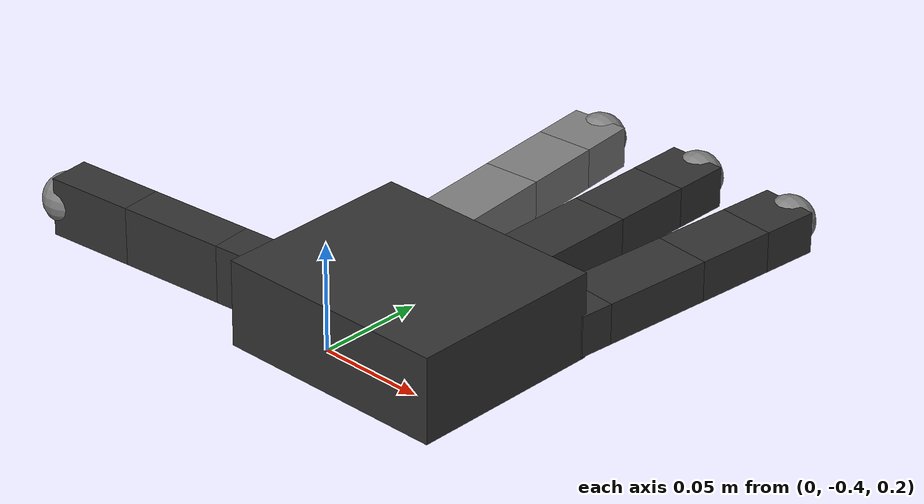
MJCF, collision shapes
<mujoco model="allegro_hand_right">
  <compiler angle="radian"/>
  <option apirate="200" iterations="20" noslip_iterations="20" cone="elliptic"/>
  <size njmax="2000" nconmax="500" nstack="600000"/>
  <default class="main">
    <default class="collision">
      <geom conaffinity="0" group="4" friction="1 0.5 0.01" margin="0.0005" condim="4"/>
    </default>
    <default class="visual">
      <geom type="mesh" contype="0" conaffinity="0" group="1" material="MatViz" friction="1 0.5 0.01"
            margin="0.0005"/>
    </default>
  </default>
  <asset>
    <material name="MatViz" specular="0.75" shininess="0.1" reflectance="0.5" rgba="0.2 0.2 0.2 1"/>
    <mesh file="meshes/base_link.STL" name="base_link" scale="1 1 1"/>
    <mesh file="meshes/link_0.0.STL" name="link0" scale="1 1 1"/>
    <mesh file="meshes/link_1.0.STL" name="link1" scale="1 1 1"/>
    <mesh file="meshes/link_2.0.STL" name="link2" scale="1 1 1"/>
    <mesh file="meshes/link_3.0.STL" name="link3" scale="1 1 1"/>
    <mesh file="meshes/link_13.0.STL" name="link13" scale="1 1 1"/>
    <mesh file="meshes/link_14.0.STL" name="link14" scale="1 1 1"/>
    <mesh file="meshes/link_15.0.STL" name="link15" scale="1 1 1"/>
    <mesh file="meshes/link_12.0_right.STL" name="link12_right" scale="1 1 1"/>
    <mesh file="meshes/link_3.0_tip.STL" name="link3_tip" scale="1 1 1"/>
    <mesh file="meshes/link_15.0_tip.STL" name="link15_tip" scale="1 1 1"/>
  </asset>
  <worldbody>
    <body name="forearm" pos="0 -0.4 0.2" quat="0.5 -0.5 0.5 0.5">
      <inertial pos="0.001 -0.002 0.29" quat="0.982037 -0.0160006 0 -0.188007" mass="4" diaginertia="0.005 0.005 0.0025"/>
      <joint name="ARTx" pos="0 0 0" axis="0 -1 0" type="slide" range="-0.25 0.25" damping="20" limited="true"
             margin="0.01" armature="0.001" frictionloss="0.001"/>
      <joint name="ARTy" pos="0 0 0" axis="0 0 1" type="slide" range="-0.3 0.5" damping="20" limited="true"
             margin="0.01"
             armature="0.001" frictionloss="0.001"/>
      <joint name="ARTz" pos="0 0 0" axis="-1 0 0" type="slide" range="-0.1 0.2" damping="20" limited="true"
             margin="0.01" armature="0.001" frictionloss="0.001"/>
      <joint name="ARRx" pos="0 0 0" axis="0 -1 0" range="-0.75 0.75" damping="20" limited="true" margin="0.01"
             armature="0.001" frictionloss="0.001"/>
      <joint name="ARRy" pos="0 0 0" axis="0 0 1" range="-0.75 0.75" damping="20" limited="true" margin="0.01"
             armature="0.001" frictionloss="0.001"/>
      <joint name="ARRz" pos="0 0 0" axis="-1 0 0" range="-0.75 0.75" damping="20" limited="true" margin="0.01"
             armature="0.001" frictionloss="0.001"/>
      <body name="base_link" pos="0.0098 0.0 0.095">
        <site name="S_grasp" pos="0 0 0" type="sphere" size="0.01" rgba="1 0 0 1" group="4"/>
        <geom class="collision" size="0.0204 0.0565 0.0475" pos="-0.0093 0 -0.0475" type="box" rgba="0.2 0.2 0.2 1"/>
        <geom class="visual" mesh="base_link" rgba="0.2 0.2 0.2 1"/>
        <body name="link_0.0" pos="0 0.0435 -0.001542" quat="0.999048 -0.0436194 0 0">
          <inertial pos="0 0 0.0082" mass="0.0088396" diaginertia="7.55204e-07 4.8111e-07 8.40064e-07"/>
          <joint name="joint_0.0" pos="0 0 0" axis="0 0 1" limited="true" range="-0.47 0.47" margin="0.01"
                 armature="0.001" damping="0.05" frictionloss="0.001"/>
          <geom class="collision" size="0.0098 0.01375 0.0082" pos="0 0 0.0082" type="box" name="C_link0"/>
          <geom class="visual" mesh="link0" rgba="0.2 0.2 0.2 1"/>
          <body name="link_1.0" pos="0 0 0.0164">
            <inertial pos="0 0 0.027" mass="0.029106" diaginertia="8.90704e-06 8.00454e-06 2.76606e-06"/>
            <joint name="joint_1.0" pos="0 0 0" axis="0 1 0" limited="true" range="-0.196 1.61" margin="0.01"
                   armature="0.001" damping="0.05" frictionloss="0.001"/>
            <geom class="collision" size="0.0098 0.01375 0.027" pos="0 0 0.027" type="box" name="C_link1"/>
            <geom class="visual" mesh="link1" rgba="0.2 0.2 0.2 1"/>
            <body name="link_2.0" pos="0 0 0.054">
              <inertial pos="0 0 0.0192" mass="0.0206976" diaginertia="3.8477e-06 3.20592e-06 1.96698e-06"/>
              <joint name="joint_2.0" pos="0 0 0" axis="0 1 0" limited="true" range="-0.174 1.709" margin="0.01"
                     armature="0.001" damping="0.05" frictionloss="0.001"/>
              <geom class="collision" size="0.0098 0.01375 0.0192" pos="0 0 0.0192" type="box" name="C_link2"/>
              <geom class="visual" mesh="link2" rgba="0.2 0.2 0.2 1"/>
              <body name="link_3.0" pos="0 0 0.0384">
                <inertial pos="0 0 0.0178175" mass="0.0216295"
                          diaginertia="3.03714e-06 2.5909e-06 1.78459e-06"/>
                <joint name="joint_3.0" pos="0 0 0" axis="0 1 0" limited="true" range="-0.227 1.618" margin="0.01"
                       armature="0.001" damping="0.05" frictionloss="0.001"/>
                <geom class="collision" size="0.0098 0.01375 0.01335" pos="0 0 0.01335" type="box" name="C_link3"/>
                <geom class="visual" mesh="link3" rgba="0.2 0.2 0.2 1"/>
                <body name="link_3.0_tip" pos="0 0 0.0267">
                  <geom class="collision" size="0.012" name="C_link3_tip"/>
                  <geom class="visual" mesh="link3_tip" rgba="0.9 0.9 0.9 1"/>
                </body>
              </body>
            </body>
          </body>
        </body>
        <body name="link_4.0" pos="0 0 0.0007">
          <inertial pos="0 0 0.0082" mass="0.0088396" diaginertia="7.55204e-07 4.8111e-07 8.40064e-07"/>
          <joint name="joint_4.0" pos="0 0 0" axis="0 0 1" limited="true" range="-0.47 0.47" margin="0.01"
                 armature="0.001" damping="0.05" frictionloss="0.001"/>
          <geom class="collision" size="0.0098 0.01375 0.0082" pos="0 0 0.0082" type="box" name="C_link4"/>
          <geom class="visual" mesh="link0" rgba="0.2 0.2 0.2 1"/>
          <body name="link_5.0" pos="0 0 0.0164">
            <inertial pos="0 0 0.027" mass="0.029106" diaginertia="8.90704e-06 8.00454e-06 2.76606e-06"/>
            <joint name="joint_5.0" pos="0 0 0" axis="0 1 0" limited="true" range="-0.196 1.61" margin="0.01"
                   armature="0.001" damping="0.05" frictionloss="0.001"/>
            <geom class="collision" size="0.0098 0.01375 0.027" pos="0 0 0.027" type="box" rgba="0.2 0.2 0.2 1" name="C_link5"/>
            <geom class="visual" mesh="link1" rgba="0.2 0.2 0.2 1"/>
            <body name="link_6.0" pos="0 0 0.054">
              <inertial pos="0 0 0.0192" mass="0.0206976" diaginertia="3.8477e-06 3.20592e-06 1.96698e-06"/>
              <joint name="joint_6.0" pos="0 0 0" axis="0 1 0" limited="true" range="-0.174 1.709" margin="0.01"
                     armature="0.001" damping="0.05" frictionloss="0.001"/>
              <geom class="collision" size="0.0098 0.01375 0.0192" pos="0 0 0.0192" type="box" rgba="0.2 0.2 0.2 1" name="C_link6"/>
              <geom class="visual" mesh="link2" rgba="0.2 0.2 0.2 1"/>
              <body name="link_7.0" pos="0 0 0.0384">
                <inertial pos="0 0 0.0178175" mass="0.0216295"
                          diaginertia="3.03714e-06 2.5909e-06 1.78459e-06"/>
                <joint name="joint_7.0" pos="0 0 0" axis="0 1 0" limited="true" range="-0.227 1.618" margin="0.01"
                       armature="0.001" damping="0.05" frictionloss="0.001"/>
                <geom class="collision" size="0.0098 0.01375 0.01335" pos="0 0 0.01335" type="box" name="C_link7"
                      rgba="0.2 0.2 0.2 1"/>
                <geom class="visual" mesh="link3" rgba="0.2 0.2 0.2 1"/>
                <body name="link_7.0_tip" pos="0 0 0.0267">
                  <geom class="collision" size="0.012" name="C_link7_tip"/>
                  <geom class="visual" mesh="link3_tip" rgba="0.9 0.9 0.9 1"/>
                </body>
              </body>
            </body>
          </body>
        </body>
        <body name="link_8.0" pos="0 -0.0435 -0.001542" quat="0.999048 0.0436194 0 0">
          <inertial pos="0 0 0.0082" mass="0.0088396" diaginertia="7.55204e-07 4.8111e-07 8.40064e-07"/>
          <joint name="joint_8.0" pos="0 0 0" axis="0 0 1" limited="true" range="-0.47 0.47" margin="0.01"
                 armature="0.001" damping="0.05" frictionloss="0.001"/>
          <geom class="collision" size="0.0098 0.01375 0.0082" pos="0 0 0.0082" type="box" rgba="0.2 0.2 0.2 1" name="C_link8"/>
          <geom class="visual" mesh="link0" rgba="0.2 0.2 0.2 1"/>
          <body name="link_9.0" pos="0 0 0.0164">
            <inertial pos="0 0 0.027" mass="0.029106" diaginertia="8.90704e-06 8.00454e-06 2.76606e-06"/>
            <joint name="joint_9.0" pos="0 0 0" axis="0 1 0" limited="true" range="-0.196 1.61" margin="0.01"
                   armature="0.001" damping="0.05" frictionloss="0.001"/>
            <geom class="collision" size="0.0098 0.01375 0.027" pos="0 0 0.027" type="box" rgba="0.2 0.2 0.2 1" name="C_link9"/>
            <geom class="visual" mesh="link1" rgba="0.2 0.2 0.2 1"/>
            <body name="link_10.0" pos="0 0 0.054">
              <inertial pos="0 0 0.0192" mass="0.0206976" diaginertia="3.8477e-06 3.20592e-06 1.96698e-06"/>
              <joint name="joint_10.0" pos="0 0 0" axis="0 1 0" limited="true" range="-0.174 1.709" margin="0.01"
                     armature="0.001" damping="0.05" frictionloss="0.001"/>
              <geom class="collision" size="0.0098 0.01375 0.0192" pos="0 0 0.0192" type="box" rgba="0.2 0.2 0.2 1" name="C_link10"/>
              <geom class="visual" mesh="link2" rgba="0.2 0.2 0.2 1"/>
              <body name="link_11.0" pos="0 0 0.0384">
                <inertial pos="0 0 0.0178175" mass="0.0216295"
                          diaginertia="3.03714e-06 2.5909e-06 1.78459e-06"/>
                <joint name="joint_11.0" pos="0 0 0" axis="0 1 0" limited="true" range="-0.227 1.618" margin="0.01"
                       armature="0.001" damping="0.05" frictionloss="0.001"/>
                <geom class="collision" size="0.0098 0.01375 0.01335" pos="0 0 0.01335" type="box"
                      rgba="0.2 0.2 0.2 1" name="C_link11"/>
                <geom class="visual" mesh="link3" rgba="0.2 0.2 0.2 1"/>
                <body name="link_11.0_tip" pos="0 0 0.0267">
                  <geom class="collision" size="0.012" name="C_link11_tip"/>
                  <geom class="visual" mesh="link3_tip" rgba="0.9 0.9 0.9 1"/>
                </body>
              </body>
            </body>
          </body>
        </body>
        <body name="link_12.0" pos="-0.0182 0.019333 -0.045987" quat="0.477714 -0.521334 -0.521334 -0.477714">
          <inertial pos="-0.0179 0.009 0.0145" mass="0.0553826" diaginertia="1.48898e-05 1.54697e-05 1.12502e-05"/>
          <joint name="joint_12.0" pos="0 0 0" axis="-1 0 0" limited="true" range="0.263 1.396" margin="0.01"
                 armature="0.001" damping="0.05" frictionloss="0.001"/>
          <geom class="collision" size="0.0179 0.017 0.02275" pos="-0.0179 0.009 0.0145" type="box"
                rgba="0.2 0.2 0.2 1" name="C_link12"/>
          <geom class="visual" mesh="link12_right" rgba="0.2 0.2 0.2 1"/>
          <body name="link_13.0" pos="-0.027 0.005 0.0399">
            <inertial pos="0 0 0.00885" mass="0.0095403" diaginertia="8.50311e-07 5.5449e-07 9.06654e-07"/>
            <joint name="joint_13.0" pos="0 0 0" axis="0 0 1" limited="true" range="-0.105 1.163" margin="0.01"
                   armature="0.001" damping="0.05" frictionloss="0.001"/>
            <geom class="collision" size="0.0098 0.01375 0.00885" pos="0 0 0.00885" type="box" rgba="0.2 0.2 0.2 1" name="C_link13"/>
            <geom class="visual" mesh="link13" rgba="0.2 0.2 0.2 1"/>
            <body name="link_14.0" pos="0 0 0.0177">
              <inertial pos="0 0 0.0257" mass="0.0277046" diaginertia="7.8455e-06 6.98645e-06 2.63288e-06"/>
              <joint name="joint_14.0" pos="0 0 0" axis="0 1 0" limited="true" range="-0.189 1.644" margin="0.01"
                     armature="0.001" damping="0.05" frictionloss="0.001"/>
              <geom class="collision" size="0.0098 0.01375 0.0257" pos="0 0 0.0257" type="box" rgba="0.2 0.2 0.2 1" name="C_link14"/>
              <geom class="visual" mesh="link14" rgba="0.2 0.2 0.2 1"/>
              <body name="link_15.0" pos="0 0 0.0514">
                <inertial pos="0 0 0.0262465" mass="0.0300379"
                          diaginertia="7.71099e-06 7.00403e-06 2.58367e-06"/>
                <joint name="joint_15.0" pos="0 0 0" axis="0 1 0" limited="true" range="-0.162 1.719" margin="0.01"
                       armature="0.001" damping="0.05" frictionloss="0.001"/>
                <geom class="collision" size="0.0098 0.01375 0.02115" pos="0 0 0.02115" type="box" name="C_link15"
                      rgba="0.2 0.2 0.2 1"/>
                <geom class="visual" mesh="link15" rgba="0.2 0.2 0.2 1"/>
                <body name="link_15.0_tip" pos="0 0 0.0423">
                  <geom class="collision" size="0.012" name="C_link15_tip"/>
                  <geom class="visual" mesh="link15_tip" rgba="0.9 0.9 0.9 1"/>
                </body>
              </body>
            </body>
          </body>
        </body>
      </body>
    </body>
  </worldbody>
  <tendon>
    <fixed name="T_0r" range="-0.018 0.018" limited="true">
      <joint joint="joint_0.0" coef="0.01"/>
    </fixed>
    <fixed name="T_0l" range="-0.018 0.018" limited="true">
      <joint joint="joint_0.0" coef="-0.01"/>
    </fixed>
    <fixed name="T_1u" range="-0.007 0.03" limited="true">
      <joint joint="joint_1.0" coef="0.01"/>
    </fixed>
    <fixed name="T_1d" range="-0.03 0.007" limited="true">
      <joint joint="joint_1.0" coef="-0.01"/>
    </fixed>
    <fixed name="T_2c" range="-0.001 0.001" limited="true">
      <joint joint="joint_3.0" coef="0.00705"/>
      <joint joint="joint_2.0" coef="-0.00805"/>
    </fixed>
    <fixed name="T_2u" range="-0.007 0.03" limited="true">
      <joint joint="joint_3.0" coef="0.00705"/>
      <joint joint="joint_2.0" coef="0.00805"/>
    </fixed>
    <fixed name="T_2d" range="-0.03 0.007" limited="true">
      <joint joint="joint_3.0" coef="-0.00705"/>
      <joint joint="joint_2.0" coef="-0.00805"/>
    </fixed>
    <fixed name="T_4r" range="-0.018 0.018" limited="true">
      <joint joint="joint_4.0" coef="0.01"/>
    </fixed>
    <fixed name="T_4l" range="-0.018 0.018" limited="true">
      <joint joint="joint_4.0" coef="-0.01"/>
    </fixed>
    <fixed name="T_5u" range="-0.007 0.03" limited="true">
      <joint joint="joint_5.0" coef="0.01"/>
    </fixed>
    <fixed name="T_5d" range="-0.03 0.007" limited="true">
      <joint joint="joint_5.0" coef="-0.01"/>
    </fixed>
    <fixed name="T_6c" range="-0.001 0.001" limited="true">
      <joint joint="joint_7.0" coef="0.00705"/>
      <joint joint="joint_6.0" coef="-0.00805"/>
    </fixed>
    <fixed name="T_6u" range="-0.007 0.03" limited="true">
      <joint joint="joint_7.0" coef="0.00705"/>
      <joint joint="joint_6.0" coef="0.00805"/>
    </fixed>
    <fixed name="T_6d" range="-0.03 0.007" limited="true">
      <joint joint="joint_7.0" coef="-0.00705"/>
      <joint joint="joint_6.0" coef="-0.00805"/>
    </fixed>
    <fixed name="T_8r" range="-0.018 0.018" limited="true">
      <joint joint="joint_8.0" coef="0.01"/>
    </fixed>
    <fixed name="T_8l" range="-0.018 0.018" limited="true">
      <joint joint="joint_8.0" coef="-0.01"/>
    </fixed>
    <fixed name="T_9u" range="-0.007 0.03" limited="true">
      <joint joint="joint_9.0" coef="0.01"/>
    </fixed>
    <fixed name="T_9d" range="-0.03 0.007" limited="true">
      <joint joint="joint_9.0" coef="-0.01"/>
    </fixed>
    <fixed name="T_10c" range="-0.001 0.001" limited="true">
      <joint joint="joint_11.0" coef="0.00705"/>
      <joint joint="joint_10.0" coef="-0.00805"/>
    </fixed>
    <fixed name="T_10u" range="-0.007 0.03" limited="true">
      <joint joint="joint_11.0" coef="0.00705"/>
      <joint joint="joint_10.0" coef="0.00805"/>
    </fixed>
    <fixed name="T_10d" range="-0.03 0.007" limited="true">
      <joint joint="joint_11.0" coef="-0.00705"/>
      <joint joint="joint_10.0" coef="-0.00805"/>
    </fixed>
    <fixed name="T_12r" range="-0.018 0.018" limited="true">
      <joint joint="joint_12.0" coef="0.01"/>
    </fixed>
    <fixed name="T_12l" range="-0.018 0.018" limited="true">
      <joint joint="joint_12.0" coef="-0.01"/>
    </fixed>
    <fixed name="T_13u" range="-0.007 0.03" limited="true">
      <joint joint="joint_13.0" coef="0.01"/>
    </fixed>
    <fixed name="T_13d" range="-0.03 0.007" limited="true">
      <joint joint="joint_13.0" coef="-0.01"/>
    </fixed>
    <fixed name="T_14c" range="-0.001 0.001" limited="true">
      <joint joint="joint_15.0" coef="0.00705"/>
      <joint joint="joint_14.0" coef="-0.00805"/>
    </fixed>
    <fixed name="T_14u" range="-0.007 0.03" limited="true">
      <joint joint="joint_15.0" coef="0.00705"/>
      <joint joint="joint_14.0" coef="0.00805"/>
    </fixed>
    <fixed name="T_14d" range="-0.03 0.007" limited="true">
      <joint joint="joint_15.0" coef="-0.00705"/>
      <joint joint="joint_14.0" coef="-0.00805"/>
    </fixed>
  </tendon>
  <actuator>
    <general biasprm="0 -200 0 0 0 0 0 0 0 0" biastype="affine" ctrllimited="true" ctrlrange="-0.25 0.25"
             gainprm="200 0 0 0 0 0 0 0 0 0" joint="ARTx" name="A_ARTx"/>
    <general biasprm="0 -200 0 0 0 0 0 0 0 0" biastype="affine" ctrllimited="true" ctrlrange="-0.3 0.5"
             gainprm="200 0 0 0 0 0 0 0 0 0" joint="ARTy" name="A_ARTy"/>
    <general biasprm="30 -200 0 0 0 0 0 0 0 0" biastype="affine" ctrllimited="true" ctrlrange="-0.1 0.2"
             gainprm="200 0 0 0 0 0 0 0 0 0" joint="ARTz" name="A_ARTz"/>
    <general biasprm="0 -200 0 0 0 0 0 0 0 0" biastype="affine" ctrllimited="true" ctrlrange="-0.75 0.75"
             gainprm="200 0 0 0 0 0 0 0 0 0" joint="ARRx" name="A_ARRx"/>
    <general biasprm="0 -200 0 0 0 0 0 0 0 0" biastype="affine" ctrllimited="true" ctrlrange="-0.75 0.75"
             gainprm="200 0 0 0 0 0 0 0 0 0" joint="ARRy" name="A_ARRy"/>
    <general biasprm="0 -200 0 0 0 0 0 0 0 0" biastype="affine" ctrllimited="true" ctrlrange="-0.75 0.75"
             gainprm="200 0 0 0 0 0 0 0 0 0" joint="ARRz" name="A_ARRz"/>
    <general biasprm="0 -1 0 0 0 0 0 0 0 0" biastype="affine" ctrllimited="true" ctrlrange="-0.47 0.47"
             joint="joint_0.0" name="A_joint_0.0"/>
    <general biasprm="0 -1 0 0 0 0 0 0 0 0" biastype="affine" ctrllimited="true" ctrlrange="-0.196 1.61"
             joint="joint_1.0" name="A_joint_1.0"/>
    <general biasprm="0 -1 0 0 0 0 0 0 0 0" biastype="affine" ctrllimited="true" ctrlrange="-0.174 1.709"
             joint="joint_2.0" name="A_joint_2.0"/>
    <general biasprm="0 -1 0 0 0 0 0 0 0 0" biastype="affine" ctrllimited="true" ctrlrange="-0.227 1.618"
             joint="joint_3.0" name="A_joint_3.0"/>
    <general biasprm="0 -1 0 0 0 0 0 0 0 0" biastype="affine" ctrllimited="true" ctrlrange="-0.47 0.47"
             joint="joint_4.0" name="A_joint_4.0"/>
    <general biasprm="0 -1 0 0 0 0 0 0 0 0" biastype="affine" ctrllimited="true" ctrlrange="-0.196 1.61"
             joint="joint_5.0" name="A_joint_5.0"/>
    <general biasprm="0 -1 0 0 0 0 0 0 0 0" biastype="affine" ctrllimited="true" ctrlrange="-0.174 1.709"
             joint="joint_6.0" name="A_joint_6.0"/>
    <general biasprm="0 -1 0 0 0 0 0 0 0 0" biastype="affine" ctrllimited="true" ctrlrange="-0.227 1.618"
             joint="joint_7.0" name="A_joint_7.0"/>
    <general biasprm="0 -1 0 0 0 0 0 0 0 0" biastype="affine" ctrllimited="true" ctrlrange="-0.47 0.47"
             joint="joint_8.0" name="A_joint_8.0"/>
    <general biasprm="0 -1 0 0 0 0 0 0 0 0" biastype="affine" ctrllimited="true" ctrlrange="-0.196 1.61"
             joint="joint_9.0" name="A_joint_9.0"/>
    <general biasprm="0 -1 0 0 0 0 0 0 0 0" biastype="affine" ctrllimited="true" ctrlrange="-0.174 1.709"
             joint="joint_10.0" name="A_joint_10.0"/>
    <general biasprm="0 -1 0 0 0 0 0 0 0 0" biastype="affine" ctrllimited="true" ctrlrange="-0.227 1.618"
             joint="joint_11.0" name="A_joint_11.0"/>
    <general biasprm="0 -1 0 0 0 0 0 0 0 0" biastype="affine" ctrllimited="true" ctrlrange="0.263 1.396"
             joint="joint_12.0" name="A_joint_12.0"/>
    <general biasprm="0 -1 0 0 0 0 0 0 0 0" biastype="affine" ctrllimited="true" ctrlrange="-0.105 1.163"
             joint="joint_13.0" name="A_joint_13.0"/>
    <general biasprm="0 -1 0 0 0 0 0 0 0 0" biastype="affine" ctrllimited="true" ctrlrange="-0.189 1.644"
             joint="joint_14.0" name="A_joint_14.0"/>
    <general biasprm="0 -1 0 0 0 0 0 0 0 0" biastype="affine" ctrllimited="true" ctrlrange="-0.162 1.719"
             joint="joint_15.0" name="A_joint_15.0"/>
  </actuator>
</mujoco>
